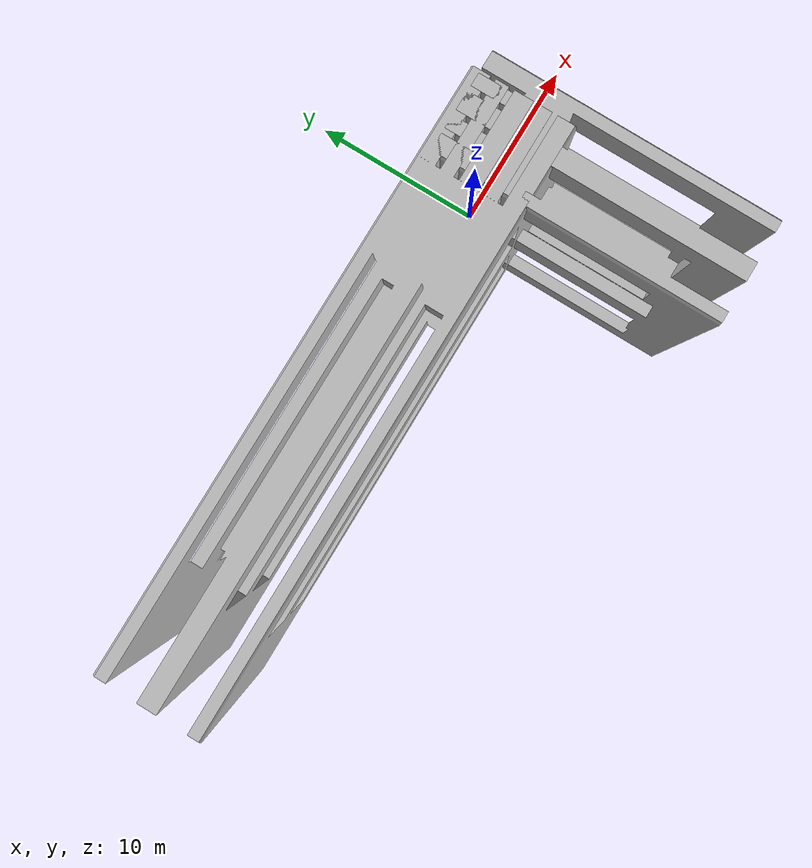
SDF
<sdf version='1.4'>
	<model name='2pallets+stepping_blocks'>
		<static>1</static>
		<link name='pallet_1'>
			<pose>-0.5 0 0.06 0 0 -1.5708</pose>
			<collision name='collision'>
				<geometry>
					<mesh>
						<uri>model://pallet_benchmark/mesh/pallet.dae</uri>
						<scale>0.787 24.75 1.417</scale>
					</mesh>
				</geometry>
				<surface>
					<bounce>
						<restitution_coefficient>0.01</restitution_coefficient>
						<threshold>5</threshold>
					</bounce>
					<friction>
						<ode>
							<mu>10</mu>
							<mu2>10</mu2>
						</ode>
					</friction>
					<contact>
						<ode>
							<soft_cfm>0.001</soft_cfm>
							<kp>100000</kp>
							<kd>1000</kd>
						</ode>
					</contact>
				</surface>
				<max_contacts>10</max_contacts>
			</collision>
			<visual name='visual'>
				<geometry>
					<mesh>
						<uri>model://pallet_benchmark/mesh/pallet.dae</uri>
						<scale>0.787 24.75 1.417</scale>
					</mesh>
				</geometry>
			</visual>
		</link>
		<link name='pallet_2'>
			<pose>3.1 0 0.06 0 -0 0</pose>
			<collision name='collision'>
				<geometry>
					<mesh>
						<uri>model://pallet_benchmark/mesh/pallet.dae</uri>
						<scale>0.787 11.81 1.417</scale>
					</mesh>
				</geometry>
				<surface>
					<bounce>
						<restitution_coefficient>0.01</restitution_coefficient>
						<threshold>5</threshold>
					</bounce>
					<friction>
						<ode>
							<mu>10</mu>
							<mu2>10</mu2>
						</ode>
					</friction>
					<contact>
						<ode>
							<soft_cfm>0.001</soft_cfm>
							<kp>100000</kp>
							<kd>1000</kd>
						</ode>
					</contact>
				</surface>
				<max_contacts>10</max_contacts>
			</collision>
			<visual name='visual'>
				<geometry>
					<mesh>
						<uri>model://pallet_benchmark/mesh/pallet.dae</uri>
						<scale>0.787 11.81 1.417</scale>
					</mesh>
				</geometry>
			</visual>
		</link>
		<link name='cobblestones_1'>
			<pose>1.6 0 -0.1 0 -0 0</pose>
			<collision name='collision'>
				<geometry>
					<mesh>
						<uri>model://cobblestones_2/mesh/cobblestones.dae</uri>
						<scale>0.175 0.175 0.35</scale>
					</mesh>
				</geometry>
				<surface>
					<bounce>
						<restitution_coefficient>0.01</restitution_coefficient>
						<threshold>5</threshold>
					</bounce>
					<friction>
						<ode>
							<mu>10</mu>
							<mu2>10</mu2>
						</ode>
					</friction>
					<contact>
						<ode>
							<soft_cfm>0.001</soft_cfm>
							<kp>100000</kp>
							<kd>1000</kd>
						</ode>
					</contact>
				</surface>
				<max_contacts>10</max_contacts>
			</collision>
			<visual name='visual'>
				<geometry>
					<mesh>
						<uri>model://cobblestones_2/mesh/cobblestones.dae</uri>
						<scale>0.175 0.175 0.35</scale>
					</mesh>
				</geometry>
			</visual>
		</link>
	<link name='lumber_1'>
		<pose>1.090062 -0.209845 0.111731 1.58146 0.060683 0.195509</pose>
		<inertial>
			<mass>22.2</mass>
			<inertia>
				<ixx>0.039</ixx>
				<ixy>0</ixy>
				<ixz>0</ixz>
				<iyy>2.8</iyy>
				<iyz>0</iyz>
				<izz>2.766</izz>
			</inertia>
		</inertial>
		<collision name='collision'>
			<geometry>
				<box>
					<size>1.2192 0.038 0.1396</size>
				</box>
			</geometry>
			<surface>
				<bounce>
					<restitution_coefficient>0.01</restitution_coefficient>
					<threshold>5</threshold>
				</bounce>
				<friction>
					<ode>
						<mu>5</mu>
						<mu2>5</mu2>
					</ode>
				</friction>
				<contact>
					<ode>
						<soft_cfm>0.01</soft_cfm>
						<kp>10000</kp>
						<kd>1000</kd>
						<min_depth>0.001</min_depth>
					</ode>
				</contact>
			</surface>
			<max_contacts>10</max_contacts>
		</collision>
		<visual name='visual'>
			<geometry>
				<mesh>
					<uri>model://drc_practice_2x6/meshes/2x6x48.dae</uri>
				</mesh>
			</geometry>
		</visual>
	</link>
	<link name='lumber_2'>
		<pose>1.091033 0.251451 0.111726 -1.56283 0.060564 0.196456</pose>
		<inertial>
			<mass>22.2</mass>
			<inertia>
				<ixx>0.039</ixx>
				<ixy>0</ixy>
				<ixz>0</ixz>
				<iyy>2.8</iyy>
				<iyz>0</iyz>
				<izz>2.766</izz>
			</inertia>
		</inertial>
		<collision name='collision'>
			<geometry>
				<box>
					<size>1.2192 0.038 0.1396</size>
				</box>
			</geometry>
			<surface>
				<bounce>
					<restitution_coefficient>0.01</restitution_coefficient>
					<threshold>5</threshold>
				</bounce>
				<friction>
					<ode>
						<mu>5</mu>
						<mu2>5</mu2>
					</ode>
				</friction>
				<contact>
					<ode>
						<soft_cfm>0.01</soft_cfm>
						<kp>10000</kp>
						<kd>1000</kd>
						<min_depth>0.001</min_depth>
					</ode>
				</contact>
			</surface>
			<max_contacts>10</max_contacts>
		</collision>
		<visual name='visual'>
			<geometry>
				<mesh>
					<uri>model://drc_practice_2x6/meshes/2x6x48.dae</uri>
				</mesh>
			</geometry>
		</visual>
	</link>
	<link name='lumber_3'>
		<pose>2.31667 -0.24965 0.114933 1.57734 -0.066545 -0.078223</pose>
		<inertial>
			<mass>22.2</mass>
			<inertia>
				<ixx>0.039</ixx>
				<ixy>0</ixy>
				<ixz>0</ixz>
				<iyy>2.8</iyy>
				<iyz>0</iyz>
				<izz>2.766</izz>
			</inertia>
		</inertial>
		<collision name='collision'>
			<geometry>
				<box>
					<size>1.2192 0.038 0.1396</size>
				</box>
			</geometry>
			<surface>
				<bounce>
					<restitution_coefficient>0.01</restitution_coefficient>
					<threshold>5</threshold>
				</bounce>
				<friction>
					<ode>
						<mu>5</mu>
						<mu2>5</mu2>
					</ode>
				</friction>
				<contact>
					<ode>
						<soft_cfm>0.01</soft_cfm>
						<kp>10000</kp>
						<kd>1000</kd>
						<min_depth>0.001</min_depth>
					</ode>
				</contact>
			</surface>
			<max_contacts>10</max_contacts>
		</collision>
		<visual name='visual'>
			<geometry>
				<mesh>
					<uri>model://drc_practice_2x6/meshes/2x6x48.dae</uri>
				</mesh>
			</geometry>
		</visual>
	</link>
	<link name='lumber_4'>
		<pose>2.34208 0.204729 0.116452 -1.56255 -0.06785 -0.120022</pose>
		<inertial>
			<mass>22.2</mass>
			<inertia>
				<ixx>0.039</ixx>
				<ixy>0</ixy>
				<ixz>0</ixz>
				<iyy>2.8</iyy>
				<iyz>0</iyz>
				<izz>2.766</izz>
			</inertia>
		</inertial>
		<collision name='collision'>
			<geometry>
				<box>
					<size>1.2192 0.038 0.1396</size>
				</box>
			</geometry>
			<surface>
				<bounce>
					<restitution_coefficient>0.01</restitution_coefficient>
					<threshold>5</threshold>
				</bounce>
				<friction>
					<ode>
						<mu>5</mu>
						<mu2>5</mu2>
					</ode>
				</friction>
				<contact>
					<ode>
						<soft_cfm>0.01</soft_cfm>
						<kp>10000</kp>
						<kd>1000</kd>
						<min_depth>0.001</min_depth>
					</ode>
				</contact>
			</surface>
			<max_contacts>10</max_contacts>
		</collision>
		<visual name='visual'>
			<geometry>
				<mesh>
					<uri>model://drc_practice_2x6/meshes/2x6x48.dae</uri>
				</mesh>
			</geometry>
		</visual>
	</link>
</model>
</sdf>
